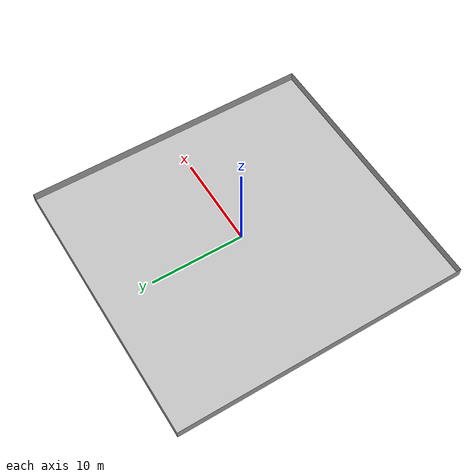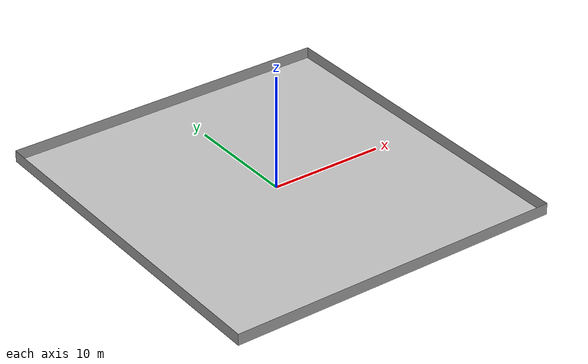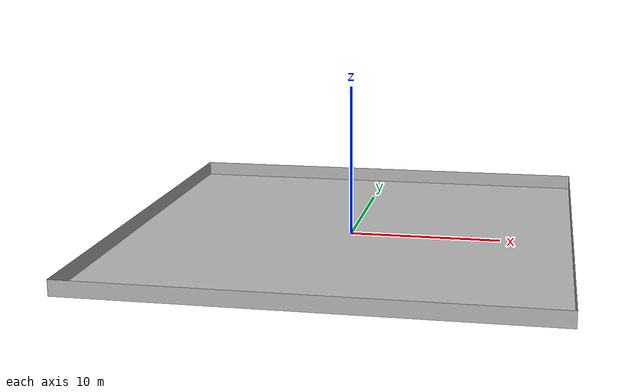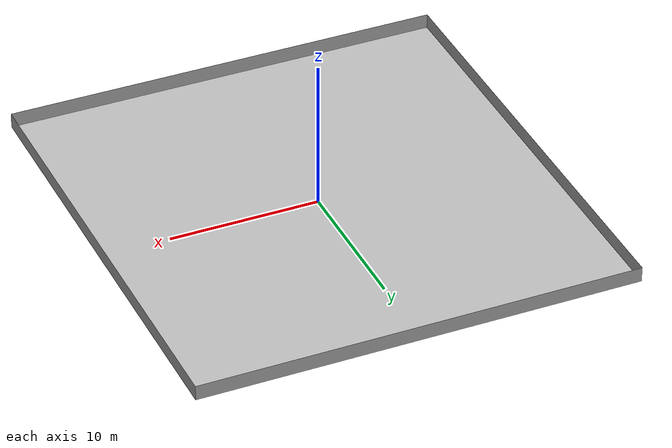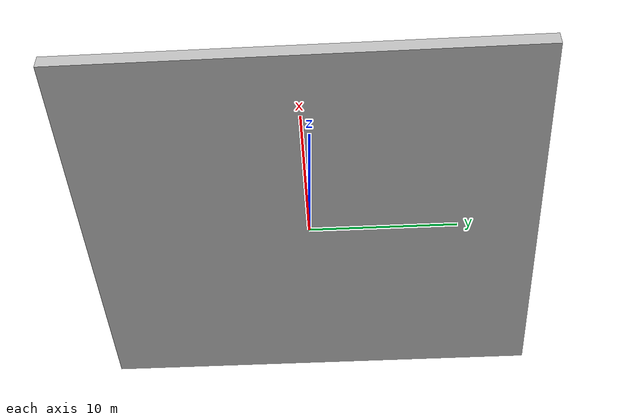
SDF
<?xml version='1.0' encoding='utf-8'?>
<sdf version="1.7">
<model name="template_model">
<link name="track">
<collision name="collision">
<pose>0 0 0 0 0 0</pose>
<geometry>
<mesh>
<uri>model://meshes/red_star_open/red_star_open_collision.dae</uri>
</mesh>
</geometry>
</collision>
<visual name="visual">
<pose>0 0 0 0 0 0</pose>
<geometry>
<mesh>
<uri>model://meshes/red_star_open/red_star_open.dae</uri>
</mesh>
</geometry>
</visual>
</link>
<static>1</static>
</model>
</sdf>
